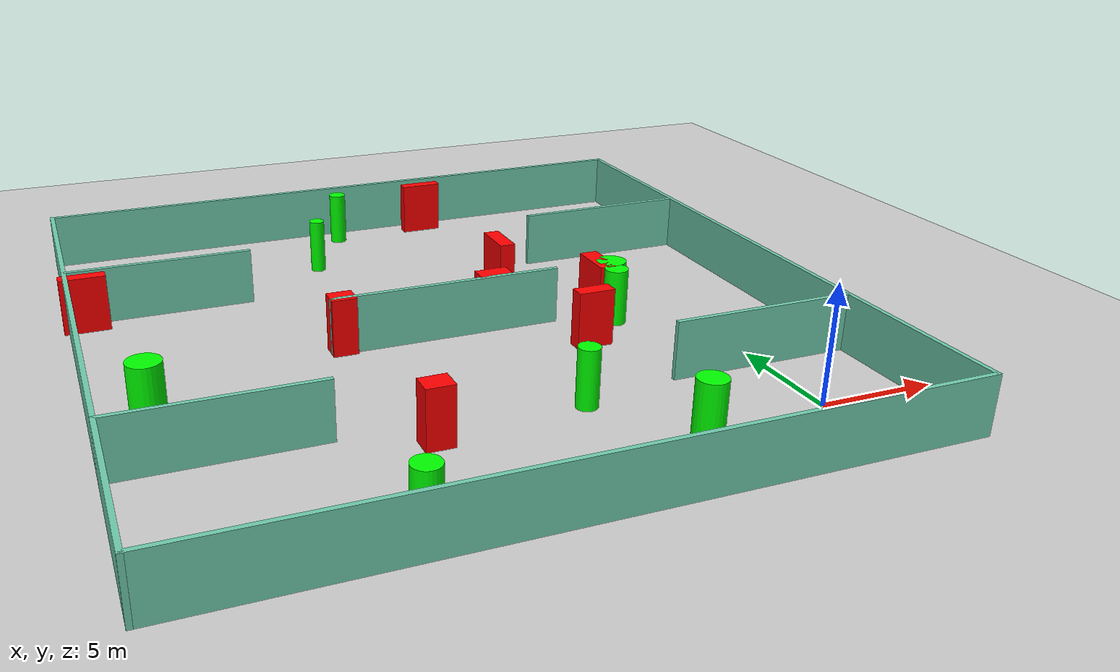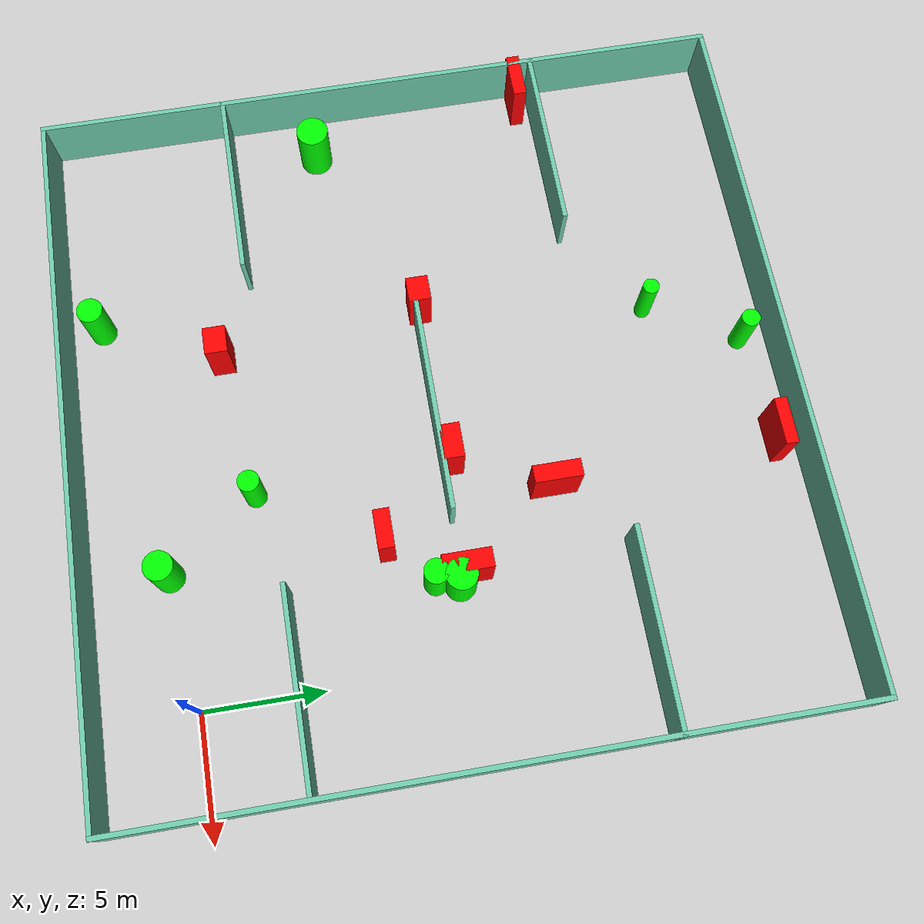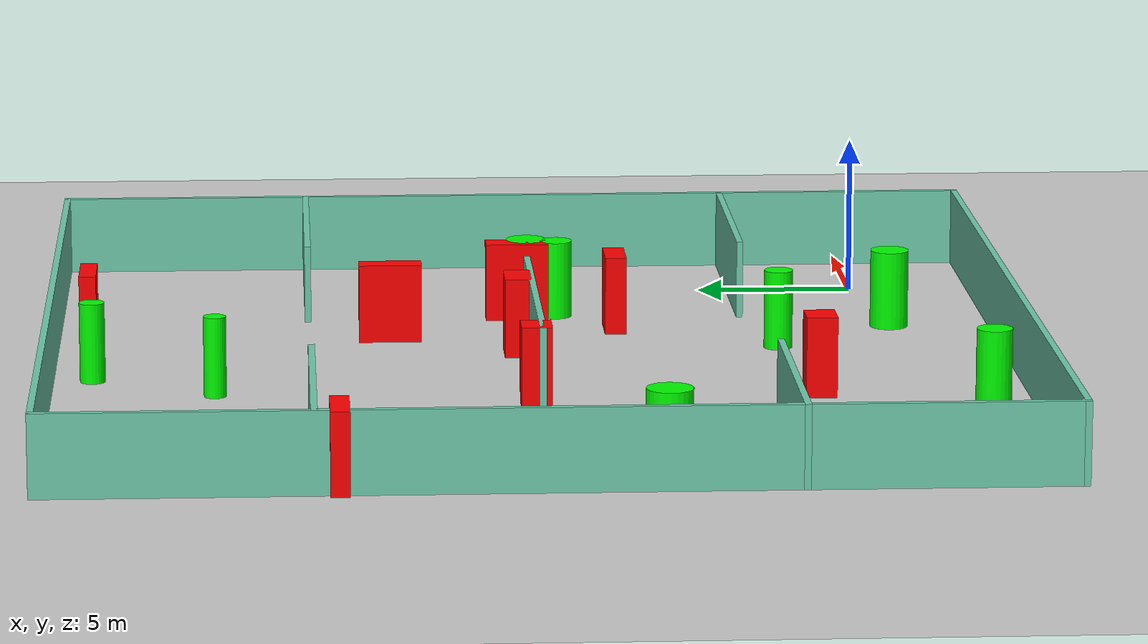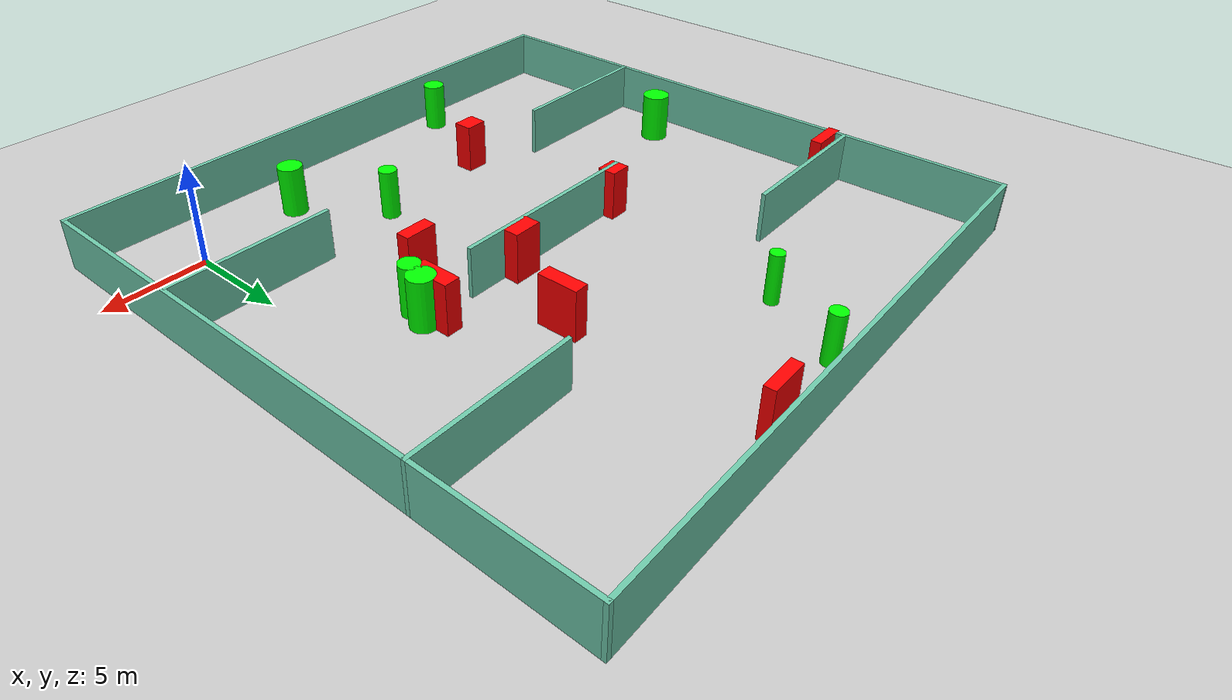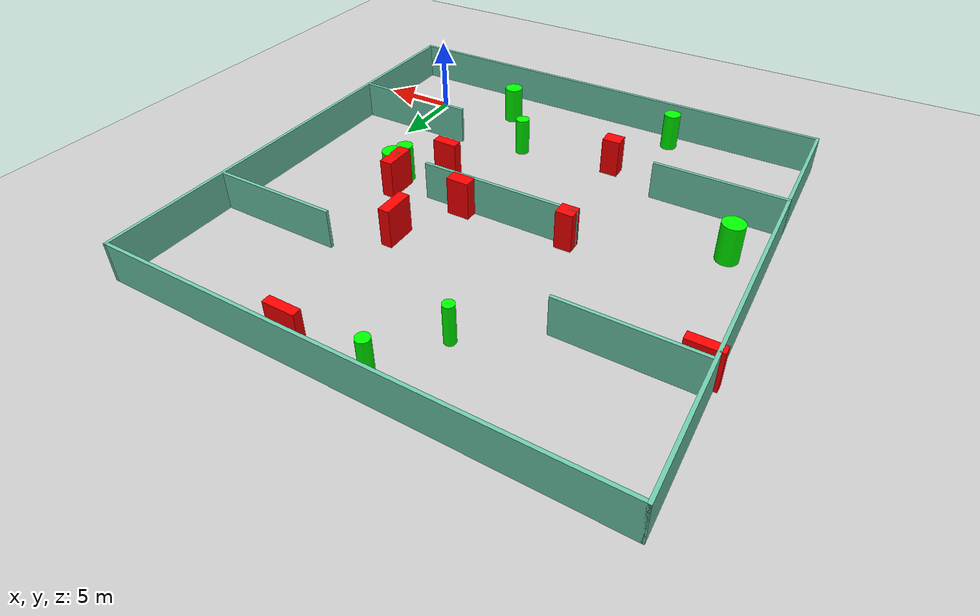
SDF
<sdf version="1.7">
 <world name="default">
  <light name="sun" type="directional">
   <pose>0 0 10 0 -0 0</pose>
   <diffuse>0.8 0.8 0.8 1</diffuse>
   <specular>0.2 0.2 0.2 1</specular>
   <attenuation>
    <range>1000</range>
    <constant>0.9</constant>
    <linear>0.01</linear>
    <quadratic>0.001</quadratic>
   </attenuation>
   <direction>-0.5 0.1 -0.9</direction>
   <spot><inner_angle>0</inner_angle><outer_angle>0</outer_angle><falloff>0</falloff></spot>
  </light>
  <model name="ground_plane">
   <static>1</static>
   <link name="link">
    <collision name="collision">
     <geometry><plane><normal>0 0 1</normal><size>100 100</size></plane></geometry>
     <surface>
      <contact><collide_bitmask>65535</collide_bitmask></contact>
      <friction><ode><mu>100</mu><mu2>50</mu2></ode></friction>
     </surface>
    </collision>
    <visual name="visual">
     <cast_shadows>0</cast_shadows>
     <geometry><plane><normal>0 0 1</normal><size>100 100</size></plane></geometry>
     <material>
      <script><uri>file://media/materials/scripts/gazebo.material</uri><name>Gazebo/Grey</name></script>
     </material>
    </visual>
   </link>
  </model>
  <gravity>0 0 -9.8</gravity>
  <magnetic_field>6e-06 2.3e-05 -4.2e-05</magnetic_field>
  <atmosphere type="adiabatic"/>
  <physics type="ode">
   <max_step_size>0.001</max_step_size>
   <real_time_factor>1</real_time_factor>
   <real_time_update_rate>1000</real_time_update_rate>
  </physics>
  <scene><ambient>0.4 0.4 0.4 1</ambient><background>0.7 0.7 0.7 1</background><shadows>1</shadows></scene>
  <spherical_coordinates>
   <surface_model>EARTH_WGS84</surface_model>
   <latitude_deg>0</latitude_deg>
   <longitude_deg>0</longitude_deg>
   <elevation>0</elevation>
   <heading_deg>0</heading_deg>
  </spherical_coordinates>
  <model name="my_base_walls">
   <link name="Wall_10">
    <collision name="Wall_10_Collision">
     <geometry><box><size>8.2 0.2 2.5</size></box></geometry>
     <pose>0 0 1.25 0 -0 0</pose>
    </collision>
    <visual name="Wall_10_Visual">
     <pose>0 0 1.25 0 -0 0</pose>
     <geometry><box><size>8.2 0.2 2.5</size></box></geometry>
     <material>
      <script><uri>file://media/materials/scripts/gazebo.material</uri><name>Gazebo/Grey</name></script>
      <ambient>0.435294 0.796078 0.67451 1</ambient>
     </material>
     <meta><layer>0</layer></meta>
    </visual>
    <pose>-11 -7 0 0 -0 0</pose>
   </link>
   <link name="Wall_12">
    <collision name="Wall_12_Collision">
     <geometry><box><size>8.2 0.2 2.5</size></box></geometry>
     <pose>0 0 1.25 0 -0 0</pose>
    </collision>
    <visual name="Wall_12_Visual">
     <pose>0 0 1.25 0 -0 0</pose>
     <geometry><box><size>8.2 0.2 2.5</size></box></geometry>
     <material>
      <script><uri>file://media/materials/scripts/gazebo.material</uri><name>Gazebo/Grey</name></script>
      <ambient>0.435294 0.796078 0.67451 1</ambient>
     </material>
     <meta><layer>0</layer></meta>
    </visual>
    <pose>-11 7 0 0 -0 0</pose>
   </link>
   <link name="Wall_14">
    <collision name="Wall_14_Collision">
     <geometry><box><size>8.2 0.2 2.5</size></box></geometry>
     <pose>0 0 1.25 0 -0 0</pose>
    </collision>
    <visual name="Wall_14_Visual">
     <pose>0 0 1.25 0 -0 0</pose>
     <geometry><box><size>8.2 0.2 2.5</size></box></geometry>
     <material>
      <script><uri>file://media/materials/scripts/gazebo.material</uri><name>Gazebo/Grey</name></script>
      <ambient>0.435294 0.796078 0.67451 1</ambient>
     </material>
     <meta><layer>0</layer></meta>
    </visual>
    <pose>11 7 0 0 -0 3.14159</pose>
   </link>
   <link name="Wall_16">
    <collision name="Wall_16_Collision">
     <geometry><box><size>10.2 0.2 2.5</size></box></geometry>
     <pose>0 0 1.25 0 -0 0</pose>
    </collision>
    <visual name="Wall_16_Visual">
     <pose>0 0 1.25 0 -0 0</pose>
     <geometry><box><size>10.2 0.2 2.5</size></box></geometry>
     <material>
      <script><uri>file://media/materials/scripts/gazebo.material</uri><name>Gazebo/Grey</name></script>
      <ambient>0.435294 0.796078 0.67451 1</ambient>
     </material>
     <meta><layer>0</layer></meta>
    </visual>
    <pose>0 0 0 0 -0 3.14159</pose>
   </link>
   <link name="Wall_2">
    <collision name="Wall_2_Collision">
     <geometry><box><size>30.2 0.2 2.5</size></box></geometry>
     <pose>0 0 1.25 0 -0 0</pose>
    </collision>
    <visual name="Wall_2_Visual">
     <pose>0 0 1.25 0 -0 0</pose>
     <geometry><box><size>30.2 0.2 2.5</size></box></geometry>
     <material>
      <script><uri>file://media/materials/scripts/gazebo.material</uri><name>Gazebo/Grey</name></script>
      <ambient>0.435294 0.796078 0.67451 1</ambient>
     </material>
     <meta><layer>0</layer></meta>
    </visual>
    <pose>0 -15 0 0 -0 3.14159</pose>
   </link>
   <link name="Wall_3">
    <collision name="Wall_3_Collision">
     <geometry><box><size>30.2 0.2 2.5</size></box></geometry>
     <pose>0 0 1.25 0 -0 0</pose>
    </collision>
    <visual name="Wall_3_Visual">
     <pose>0 0 1.25 0 -0 0</pose>
     <geometry><box><size>30.2 0.2 2.5</size></box></geometry>
     <material>
      <script><uri>file://media/materials/scripts/gazebo.material</uri><name>Gazebo/Grey</name></script>
      <ambient>0.435294 0.796078 0.67451 1</ambient>
     </material>
     <meta><layer>0</layer></meta>
    </visual>
    <pose>-15 0 0 0 -0 1.5708</pose>
   </link>
   <link name="Wall_4">
    <collision name="Wall_4_Collision">
     <geometry><box><size>30.2 0.2 2.5</size></box></geometry>
     <pose>0 0 1.25 0 -0 0</pose>
    </collision>
    <visual name="Wall_4_Visual">
     <pose>0 0 1.25 0 -0 0</pose>
     <geometry><box><size>30.2 0.2 2.5</size></box></geometry>
     <material>
      <script><uri>file://media/materials/scripts/gazebo.material</uri><name>Gazebo/Grey</name></script>
      <ambient>0.435294 0.796078 0.67451 1</ambient>
     </material>
     <meta><layer>0</layer></meta>
    </visual>
    <pose>0 15 0 0 -0 0</pose>
   </link>
   <link name="Wall_6">
    <collision name="Wall_6_Collision">
     <geometry><box><size>30.2 0.2 2.5</size></box></geometry>
     <pose>0 0 1.25 0 -0 0</pose>
    </collision>
    <visual name="Wall_6_Visual">
     <pose>0 0 1.25 0 -0 0</pose>
     <geometry><box><size>30.2 0.2 2.5</size></box></geometry>
     <material>
      <script><uri>file://media/materials/scripts/gazebo.material</uri><name>Gazebo/Grey</name></script>
      <ambient>0.435294 0.796078 0.67451 1</ambient>
     </material>
     <meta><layer>0</layer></meta>
    </visual>
    <pose>15 0 0 0 -0 1.5708</pose>
   </link>
   <link name="Wall_8">
    <collision name="Wall_8_Collision">
     <geometry><box><size>8.2 0.2 2.5</size></box></geometry>
     <pose>0 0 1.25 0 -0 0</pose>
    </collision>
    <visual name="Wall_8_Visual">
     <pose>0 0 1.25 0 -0 0</pose>
     <geometry><box><size>8.2 0.2 2.5</size></box></geometry>
     <material>
      <script><uri>file://media/materials/scripts/gazebo.material</uri><name>Gazebo/Grey</name></script>
      <ambient>0.435294 0.796078 0.67451 1</ambient>
     </material>
     <meta><layer>0</layer></meta>
    </visual>
    <pose>11 -7 0 0 -0 3.14159</pose>
   </link>
   <static>1</static>
   <pose>-11 11 0 0 -0 0</pose>
  </model>
  <model name="cylinder1">
   <static>1</static>
   <link name="link">
    <inertial>
     <mass>1</mass>
     <inertia><ixx>0.5</ixx><ixy>0</ixy><ixz>0</ixz><iyy>0.5</iyy><iyz>0</iyz><izz>1</izz></inertia>
    </inertial>
    <collision name="collision">
     <geometry><cylinder><radius>0.5142331687890254</radius><length>2.5</length></cylinder></geometry>
    </collision>
    <visual name="visual">
     <geometry><cylinder><radius>0.5142331687890254</radius><length>2.5</length></cylinder></geometry>
     <material>
      <ambient>0 1 0 1</ambient>
      <diffuse>0 1 0 1</diffuse>
      <specular>0.1 0.1 0.1 1</specular>
      <emissive>0 0 0 0</emissive>
     </material>
    </visual>
   </link>
   <pose>-3.5344350436308254 9.938997384496266 1.25 0 0 0</pose>
  </model>
  <model name="cylinder2">
   <static>1</static>
   <link name="link">
    <inertial>
     <mass>1</mass>
     <inertia><ixx>0.5</ixx><ixy>0</ixy><ixz>0</ixz><iyy>0.5</iyy><iyz>0</iyz><izz>1</izz></inertia>
    </inertial>
    <collision name="collision">
     <geometry><cylinder><radius>0.6527459753673487</radius><length>2.5</length></cylinder></geometry>
    </collision>
    <visual name="visual">
     <geometry><cylinder><radius>0.6527459753673487</radius><length>2.5</length></cylinder></geometry>
     <material>
      <ambient>0 1 0 1</ambient>
      <diffuse>0 1 0 1</diffuse>
      <specular>0.1 0.1 0.1 1</specular>
      <emissive>0 0 0 0</emissive>
     </material>
    </visual>
   </link>
   <pose>-3.2733116667632274 10.898573558701148 1.25 0 0 0</pose>
  </model>
  <model name="cylinder3">
   <static>1</static>
   <link name="link">
    <inertial>
     <mass>1</mass>
     <inertia><ixx>0.5</ixx><ixy>0</ixy><ixz>0</ixz><iyy>0.5</iyy><iyz>0</iyz><izz>1</izz></inertia>
    </inertial>
    <collision name="collision">
     <geometry><cylinder><radius>0.3439020754232867</radius><length>2.5</length></cylinder></geometry>
    </collision>
    <visual name="visual">
     <geometry><cylinder><radius>0.3439020754232867</radius><length>2.5</length></cylinder></geometry>
     <material>
      <ambient>0 1 0 1</ambient>
      <diffuse>0 1 0 1</diffuse>
      <specular>0.1 0.1 0.1 1</specular>
      <emissive>0 0 0 0</emissive>
     </material>
    </visual>
   </link>
   <pose>-14.033767443706857 20.90899755023345 1.25 0 0 0</pose>
  </model>
  <model name="cylinder4">
   <static>1</static>
   <link name="link">
    <inertial>
     <mass>1</mass>
     <inertia><ixx>0.5</ixx><ixy>0</ixy><ixz>0</ixz><iyy>0.5</iyy><iyz>0</iyz><izz>1</izz></inertia>
    </inertial>
    <collision name="collision">
     <geometry><cylinder><radius>0.45196638177940807</radius><length>2.5</length></cylinder></geometry>
    </collision>
    <visual name="visual">
     <geometry><cylinder><radius>0.45196638177940807</radius><length>2.5</length></cylinder></geometry>
     <material>
      <ambient>0 1 0 1</ambient>
      <diffuse>0 1 0 1</diffuse>
      <specular>0.1 0.1 0.1 1</specular>
      <emissive>0 0 0 0</emissive>
     </material>
    </visual>
   </link>
   <pose>-8.350400395008641 3.146384595645758 1.25 0 0 0</pose>
  </model>
  <model name="cylinder5">
   <static>1</static>
   <link name="link">
    <inertial>
     <mass>1</mass>
     <inertia><ixx>0.5</ixx><ixy>0</ixy><ixz>0</ixz><iyy>0.5</iyy><iyz>0</iyz><izz>1</izz></inertia>
    </inertial>
    <collision name="collision">
     <geometry><cylinder><radius>0.6106210684208758</radius><length>2.5</length></cylinder></geometry>
    </collision>
    <visual name="visual">
     <geometry><cylinder><radius>0.6106210684208758</radius><length>2.5</length></cylinder></geometry>
     <material>
      <ambient>0 1 0 1</ambient>
      <diffuse>0 1 0 1</diffuse>
      <specular>0.1 0.1 0.1 1</specular>
      <emissive>0 0 0 0</emissive>
     </material>
    </visual>
   </link>
   <pose>-5.527780544826738 -0.7064750488720368 1.25 0 0 0</pose>
  </model>
  <model name="cylinder6">
   <static>1</static>
   <link name="link">
    <inertial>
     <mass>1</mass>
     <inertia><ixx>0.5</ixx><ixy>0</ixy><ixz>0</ixz><iyy>0.5</iyy><iyz>0</iyz><izz>1</izz></inertia>
    </inertial>
    <collision name="collision">
     <geometry><cylinder><radius>0.6927639145179021</radius><length>2.5</length></cylinder></geometry>
    </collision>
    <visual name="visual">
     <geometry><cylinder><radius>0.6927639145179021</radius><length>2.5</length></cylinder></geometry>
     <material>
      <ambient>0 1 0 1</ambient>
      <diffuse>0 1 0 1</diffuse>
      <specular>0.1 0.1 0.1 1</specular>
      <emissive>0 0 0 0</emissive>
     </material>
    </visual>
   </link>
   <pose>-23.908487215722218 7.769751483797982 1.25 0 0 0</pose>
  </model>
  <model name="cylinder7">
   <static>1</static>
   <link name="link">
    <inertial>
     <mass>1</mass>
     <inertia><ixx>0.5</ixx><ixy>0</ixy><ixz>0</ixz><iyy>0.5</iyy><iyz>0</iyz><izz>1</izz></inertia>
    </inertial>
    <collision name="collision">
     <geometry><cylinder><radius>0.547211874664281</radius><length>2.5</length></cylinder></geometry>
    </collision>
    <visual name="visual">
     <geometry><cylinder><radius>0.547211874664281</radius><length>2.5</length></cylinder></geometry>
     <material>
      <ambient>0 1 0 1</ambient>
      <diffuse>0 1 0 1</diffuse>
      <specular>0.1 0.1 0.1 1</specular>
      <emissive>0 0 0 0</emissive>
     </material>
    </visual>
   </link>
   <pose>-16.82273977201105 -2.572283673464765 1.25 0 0 0</pose>
  </model>
  <model name="cylinder8">
   <static>1</static>
   <link name="link">
    <inertial>
     <mass>1</mass>
     <inertia><ixx>0.5</ixx><ixy>0</ixy><ixz>0</ixz><iyy>0.5</iyy><iyz>0</iyz><izz>1</izz></inertia>
    </inertial>
    <collision name="collision">
     <geometry><cylinder><radius>0.3920878910442453</radius><length>2.5</length></cylinder></geometry>
    </collision>
    <visual name="visual">
     <geometry><cylinder><radius>0.3920878910442453</radius><length>2.5</length></cylinder></geometry>
     <material>
      <ambient>0 1 0 1</ambient>
      <diffuse>0 1 0 1</diffuse>
      <specular>0.1 0.1 0.1 1</specular>
      <emissive>0 0 0 0</emissive>
     </material>
    </visual>
   </link>
   <pose>-11.936996720046805 24.700048558247605 1.25 0 0 0</pose>
  </model>
  <model name="box1">
   <static>1</static>
   <link name="link">
    <inertial>
     <mass>1</mass>
     <inertia><ixx>0.083</ixx><ixy>0</ixy><ixz>0</ixz><iyy>0.083</iyy><iyz>0</iyz><izz>0.083</izz></inertia>
    </inertial>
    <collision name="collision">
     <geometry><box><size>0.8089406192189786 2.0156803501158667 2.5</size></box></geometry>
    </collision>
    <visual name="visual">
     <geometry><box><size>0.8089406192189786 2.0156803501158667 2.5</size></box></geometry>
     <material>
      <ambient>1 0 0 1</ambient>
      <diffuse>1 0 0 1</diffuse>
      <specular>0.1 0.1 0.1 1</specular>
      <emissive>0 0 0 0</emissive>
     </material>
    </visual>
    <sensor name="my_contact" type="contact">
     <contact><collision>box_collision</collision><topic>__default_topic__</topic></contact>
    </sensor>
   </link>
   <pose>-3.740575338577333 11.22375087021948 1.25 0 0 0</pose>
  </model>
  <model name="box2">
   <static>1</static>
   <link name="link">
    <inertial>
     <mass>1</mass>
     <inertia><ixx>0.083</ixx><ixy>0</ixy><ixz>0</ixz><iyy>0.083</iyy><iyz>0</iyz><izz>0.083</izz></inertia>
    </inertial>
    <collision name="collision">
     <geometry><box><size>1.160845655503599 0.955981958258759 2.5</size></box></geometry>
    </collision>
    <visual name="visual">
     <geometry><box><size>1.160845655503599 0.955981958258759 2.5</size></box></geometry>
     <material>
      <ambient>1 0 0 1</ambient>
      <diffuse>1 0 0 1</diffuse>
      <specular>0.1 0.1 0.1 1</specular>
      <emissive>0 0 0 0</emissive>
     </material>
    </visual>
    <sensor name="my_contact" type="contact">
     <contact><collision>box_collision</collision><topic>__default_topic__</topic></contact>
    </sensor>
   </link>
   <pose>-14.639315012778015 2.464359069849934 1.25 0 0 0</pose>
  </model>
  <model name="box3">
   <static>1</static>
   <link name="link">
    <inertial>
     <mass>1</mass>
     <inertia><ixx>0.083</ixx><ixy>0</ixy><ixz>0</ixz><iyy>0.083</iyy><iyz>0</iyz><izz>0.083</izz></inertia>
    </inertial>
    <collision name="collision">
     <geometry><box><size>0.7197558908153333 1.990345735083991 2.5</size></box></geometry>
    </collision>
    <visual name="visual">
     <geometry><box><size>0.7197558908153333 1.990345735083991 2.5</size></box></geometry>
     <material>
      <ambient>1 0 0 1</ambient>
      <diffuse>1 0 0 1</diffuse>
      <specular>0.1 0.1 0.1 1</specular>
      <emissive>0 0 0 0</emissive>
     </material>
    </visual>
    <sensor name="my_contact" type="contact">
     <contact><collision>box_collision</collision><topic>__default_topic__</topic></contact>
    </sensor>
   </link>
   <pose>-6.733879253121959 15.397517461426887 1.25 0 0 0</pose>
  </model>
  <model name="box4">
   <static>1</static>
   <link name="link">
    <inertial>
     <mass>1</mass>
     <inertia><ixx>0.083</ixx><ixy>0</ixy><ixz>0</ixz><iyy>0.083</iyy><iyz>0</iyz><izz>0.083</izz></inertia>
    </inertial>
    <collision name="collision">
     <geometry><box><size>1.0801494117586077 0.9413892803360092 2.5</size></box></geometry>
    </collision>
    <visual name="visual">
     <geometry><box><size>1.0801494117586077 0.9413892803360092 2.5</size></box></geometry>
     <material>
      <ambient>1 0 0 1</ambient>
      <diffuse>1 0 0 1</diffuse>
      <specular>0.1 0.1 0.1 1</specular>
      <emissive>0 0 0 0</emissive>
     </material>
    </visual>
    <sensor name="my_contact" type="contact">
     <contact><collision>box_collision</collision><topic>__default_topic__</topic></contact>
    </sensor>
   </link>
   <pose>-15.556961697865267 11.181973967139557 1.25 0 0 0</pose>
  </model>
  <model name="box5">
   <static>1</static>
   <link name="link">
    <inertial>
     <mass>1</mass>
     <inertia><ixx>0.083</ixx><ixy>0</ixy><ixz>0</ixz><iyy>0.083</iyy><iyz>0</iyz><izz>0.083</izz></inertia>
    </inertial>
    <collision name="collision">
     <geometry><box><size>1.4586400135374582 0.8326756282069923 2.5</size></box></geometry>
    </collision>
    <visual name="visual">
     <geometry><box><size>1.4586400135374582 0.8326756282069923 2.5</size></box></geometry>
     <material>
      <ambient>1 0 0 1</ambient>
      <diffuse>1 0 0 1</diffuse>
      <specular>0.1 0.1 0.1 1</specular>
      <emissive>0 0 0 0</emissive>
     </material>
    </visual>
    <sensor name="my_contact" type="contact">
     <contact><collision>box_collision</collision><topic>__default_topic__</topic></contact>
    </sensor>
   </link>
   <pose>-8.681252070822072 11.437327046550044 1.25 0 0 0</pose>
  </model>
  <model name="box6">
   <static>1</static>
   <link name="link">
    <inertial>
     <mass>1</mass>
     <inertia><ixx>0.083</ixx><ixy>0</ixy><ixz>0</ixz><iyy>0.083</iyy><iyz>0</iyz><izz>0.083</izz></inertia>
    </inertial>
    <collision name="collision">
     <geometry><box><size>1.968421641980293 0.5346758072817723 2.5</size></box></geometry>
    </collision>
    <visual name="visual">
     <geometry><box><size>1.968421641980293 0.5346758072817723 2.5</size></box></geometry>
     <material>
      <ambient>1 0 0 1</ambient>
      <diffuse>1 0 0 1</diffuse>
      <specular>0.1 0.1 0.1 1</specular>
      <emissive>0 0 0 0</emissive>
     </material>
    </visual>
    <sensor name="my_contact" type="contact">
     <contact><collision>box_collision</collision><topic>__default_topic__</topic></contact>
    </sensor>
   </link>
   <pose>-7.288551321550303 24.95248654714859 1.25 0 0 0</pose>
  </model>
  <model name="box7">
   <static>1</static>
   <link name="link">
    <inertial>
     <mass>1</mass>
     <inertia><ixx>0.083</ixx><ixy>0</ixy><ixz>0</ixz><iyy>0.083</iyy><iyz>0</iyz><izz>0.083</izz></inertia>
    </inertial>
    <collision name="collision">
     <geometry><box><size>1.9674465788976905 0.5718662164607217 2.5</size></box></geometry>
    </collision>
    <visual name="visual">
     <geometry><box><size>1.9674465788976905 0.5718662164607217 2.5</size></box></geometry>
     <material>
      <ambient>1 0 0 1</ambient>
      <diffuse>1 0 0 1</diffuse>
      <specular>0.1 0.1 0.1 1</specular>
      <emissive>0 0 0 0</emissive>
     </material>
    </visual>
    <sensor name="my_contact" type="contact">
     <contact><collision>box_collision</collision><topic>__default_topic__</topic></contact>
    </sensor>
   </link>
   <pose>-25.318769803319924 17.266048883016953 1.25 0 0 0</pose>
  </model>
  <model name="box8">
   <static>1</static>
   <link name="link">
    <inertial>
     <mass>1</mass>
     <inertia><ixx>0.083</ixx><ixy>0</ixy><ixz>0</ixz><iyy>0.083</iyy><iyz>0</iyz><izz>0.083</izz></inertia>
    </inertial>
    <collision name="collision">
     <geometry><box><size>1.6131593615857247 0.6759454049965462 2.5</size></box></geometry>
    </collision>
    <visual name="visual">
     <geometry><box><size>1.6131593615857247 0.6759454049965462 2.5</size></box></geometry>
     <material>
      <ambient>1 0 0 1</ambient>
      <diffuse>1 0 0 1</diffuse>
      <specular>0.1 0.1 0.1 1</specular>
      <emissive>0 0 0 0</emissive>
     </material>
    </visual>
    <sensor name="my_contact" type="contact">
     <contact><collision>box_collision</collision><topic>__default_topic__</topic></contact>
    </sensor>
   </link>
   <pose>-5.550908036804106 8.167319975220112 1.25 0 0 0</pose>
  </model>
 </world>
</sdf>
